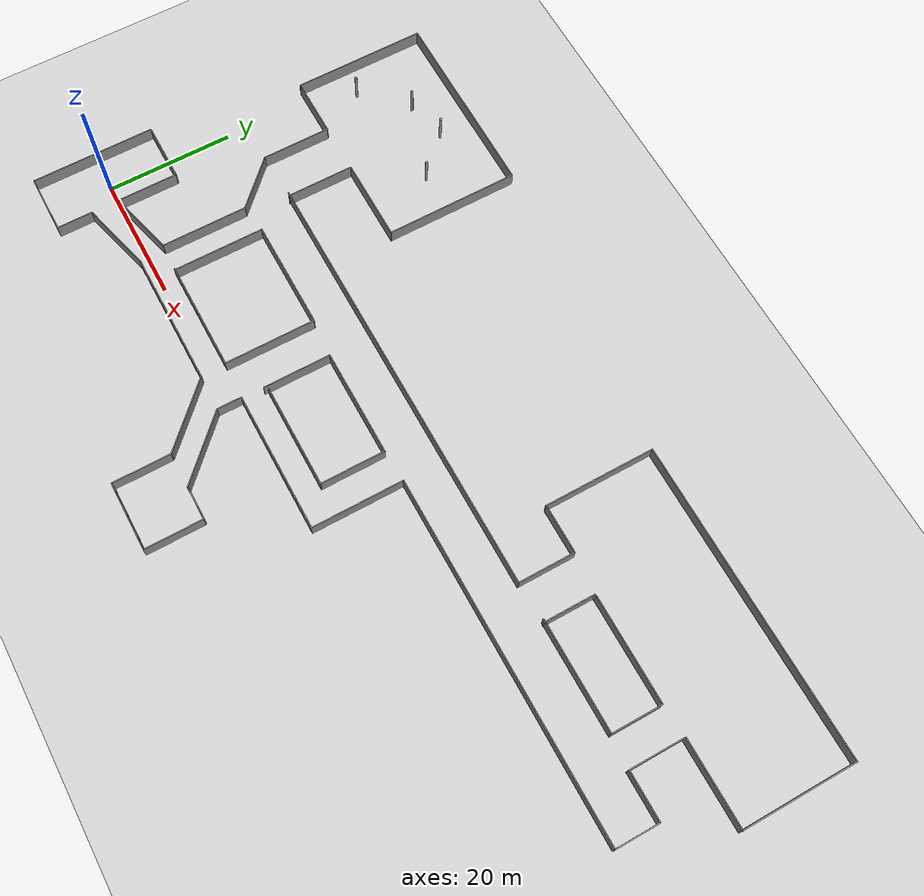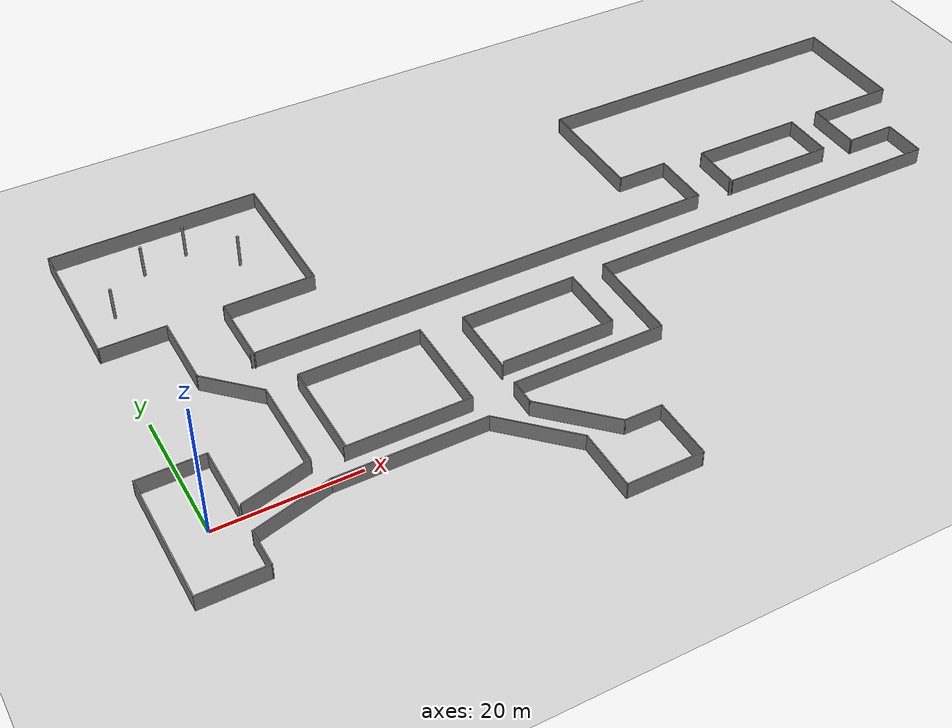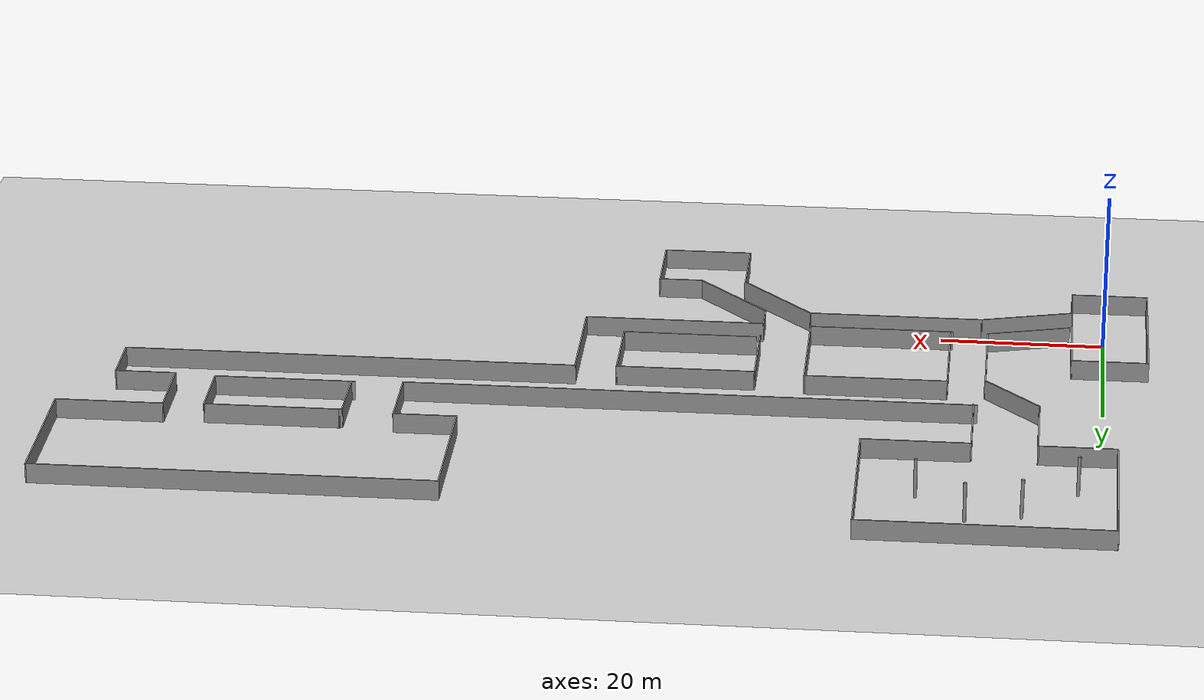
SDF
<sdf version="1.6">
 <world name="default">
  <model name="ground_plane">
   <static>1</static>
   <link name="link">
    <collision name="collision">
     <geometry><plane><normal>0 0 1</normal><size>100 100</size></plane></geometry>
     <surface><friction><ode><mu>100</mu><mu2>50</mu2></ode></friction></surface>
    </collision>
    <visual name="visual">
     <cast_shadows>0</cast_shadows>
     <geometry><plane><normal>0 0 1</normal><size>100 100</size></plane></geometry>
     <material>
      <script><uri>file://media/materials/scripts/gazebo.material</uri><name>Gazebo/Grey</name></script>
     </material>
    </visual>
   </link>
  </model>
  <model name="MultiExploreWorld">
   <pose>60 17.8179 0 0 -0 0</pose>
   <link name="Wall_10">
    <collision name="Wall_10_Collision">
     <geometry><box><size>9.5 0.15 2.5</size></box></geometry>
     <pose>0 0 1.25 0 -0 0</pose>
    </collision>
    <visual name="Wall_10_Visual">
     <pose>0 0 1.25 0 -0 0</pose>
     <geometry><box><size>9.5 0.15 2.5</size></box></geometry>
     <material>
      <script><uri>file://media/materials/scripts/gazebo.material</uri><name>Gazebo/Grey</name></script>
      <ambient>1 1 1 1</ambient>
     </material>
     <meta><layer>0</layer></meta>
    </visual>
    <pose>-60.789 -27.8261 0 0 -0 0</pose>
   </link>
   <link name="Wall_11">
    <collision name="Wall_11_Collision">
     <geometry><box><size>5.75 0.15 2.5</size></box></geometry>
     <pose>0 0 1.25 0 -0 0</pose>
    </collision>
    <visual name="Wall_11_Visual">
     <pose>0 0 1.25 0 -0 0</pose>
     <geometry><box><size>5.75 0.15 2.5</size></box></geometry>
     <material>
      <script><uri>file://media/materials/scripts/gazebo.material</uri><name>Gazebo/Grey</name></script>
      <ambient>1 1 1 1</ambient>
     </material>
     <meta><layer>0</layer></meta>
    </visual>
    <pose>-56.114 -25.0261 0 0 -0 1.5708</pose>
   </link>
   <link name="Wall_12">
    <collision name="Wall_12_Collision">
     <geometry><box><size>11.75 0.15 2.5</size></box></geometry>
     <pose>0 0 1.25 0 -0 0</pose>
    </collision>
    <visual name="Wall_12_Visual">
     <pose>0 0 1.25 0 -0 0</pose>
     <geometry><box><size>11.75 0.15 2.5</size></box></geometry>
     <material>
      <script><uri>file://media/materials/scripts/gazebo.material</uri><name>Gazebo/Grey</name></script>
      <ambient>1 1 1 1</ambient>
     </material>
     <meta><layer>0</layer></meta>
    </visual>
    <pose>-50.5116 -20.7249 0 0 -0 0.261799</pose>
   </link>
   <link name="Wall_13">
    <collision name="Wall_13_Collision">
     <geometry><box><size>21.5 0.15 2.5</size></box></geometry>
     <pose>0 0 1.25 0 -0 0</pose>
    </collision>
    <visual name="Wall_13_Visual">
     <pose>0 0 1.25 0 -0 0</pose>
     <geometry><box><size>21.5 0.15 2.5</size></box></geometry>
     <material>
      <script><uri>file://media/materials/scripts/gazebo.material</uri><name>Gazebo/Grey</name></script>
      <ambient>1 1 1 1</ambient>
     </material>
     <meta><layer>0</layer></meta>
    </visual>
    <pose>-34.2342 -19.2238 0 0 -0 0</pose>
   </link>
   <link name="Wall_14">
    <collision name="Wall_14_Collision">
     <geometry><box><size>12.5 0.15 2.5</size></box></geometry>
     <pose>0 0 1.25 0 -0 0</pose>
    </collision>
    <visual name="Wall_14_Visual">
     <pose>0 0 1.25 0 -0 0</pose>
     <geometry><box><size>12.5 0.15 2.5</size></box></geometry>
     <material>
      <script><uri>file://media/materials/scripts/gazebo.material</uri><name>Gazebo/Grey</name></script>
      <ambient>1 1 1 1</ambient>
     </material>
     <meta><layer>0</layer></meta>
    </visual>
    <pose>-19.1929 -23.5902 0 0 -0 -0.785398</pose>
   </link>
   <link name="Wall_15">
    <collision name="Wall_15_Collision">
     <geometry><box><size>9.25 0.15 2.5</size></box></geometry>
     <pose>0 0 1.25 0 -0 0</pose>
    </collision>
    <visual name="Wall_15_Visual">
     <pose>0 0 1.25 0 -0 0</pose>
     <geometry><box><size>9.25 0.15 2.5</size></box></geometry>
     <material>
      <script><uri>file://media/materials/scripts/gazebo.material</uri><name>Gazebo/Grey</name></script>
      <ambient>1 1 1 1</ambient>
     </material>
     <meta><layer>0</layer></meta>
    </visual>
    <pose>-14.8265 -32.5066 0 0 -0 -1.5708</pose>
   </link>
   <link name="Wall_16">
    <collision name="Wall_16_Collision">
     <geometry><box><size>11 0.15 2.5</size></box></geometry>
     <pose>0 0 1.25 0 -0 0</pose>
    </collision>
    <visual name="Wall_16_Visual">
     <pose>0 0 1.25 0 -0 0</pose>
     <geometry><box><size>11 0.15 2.5</size></box></geometry>
     <material>
      <script><uri>file://media/materials/scripts/gazebo.material</uri><name>Gazebo/Grey</name></script>
      <ambient>1 1 1 1</ambient>
     </material>
     <meta><layer>0</layer></meta>
    </visual>
    <pose>-9.40147 -37.0566 0 0 -0 0</pose>
   </link>
   <link name="Wall_17">
    <collision name="Wall_17_Collision">
     <geometry><box><size>9.25 0.15 2.5</size></box></geometry>
     <pose>0 0 1.25 0 -0 0</pose>
    </collision>
    <visual name="Wall_17_Visual">
     <pose>0 0 1.25 0 -0 0</pose>
     <geometry><box><size>9.25 0.15 2.5</size></box></geometry>
     <material>
      <script><uri>file://media/materials/scripts/gazebo.material</uri><name>Gazebo/Grey</name></script>
      <ambient>1 1 1 1</ambient>
     </material>
     <meta><layer>0</layer></meta>
    </visual>
    <pose>-3.97648 -32.5066 0 0 -0 1.5708</pose>
   </link>
   <link name="Wall_24">
    <collision name="Wall_24_Collision">
     <geometry><box><size>6.75 0.15 2.5</size></box></geometry>
     <pose>0 0 1.25 0 -0 0</pose>
    </collision>
    <visual name="Wall_24_Visual">
     <pose>0 0 1.25 0 -0 0</pose>
     <geometry><box><size>6.75 0.15 2.5</size></box></geometry>
     <material>
      <script><uri>file://media/materials/scripts/gazebo.material</uri><name>Gazebo/Grey</name></script>
      <ambient>1 1 1 1</ambient>
     </material>
     <meta><layer>0</layer></meta>
    </visual>
    <pose>59.714 2.20299 0 0 -0 1.5708</pose>
   </link>
   <link name="Wall_25">
    <collision name="Wall_25_Collision">
     <geometry><box><size>7.5 0.15 2.5</size></box></geometry>
     <pose>0 0 1.25 0 -0 0</pose>
    </collision>
    <visual name="Wall_25_Visual">
     <pose>0 0 1.25 0 -0 0</pose>
     <geometry><box><size>7.5 0.15 2.5</size></box></geometry>
     <material>
      <script><uri>file://media/materials/scripts/gazebo.material</uri><name>Gazebo/Grey</name></script>
      <ambient>1 1 1 1</ambient>
     </material>
     <meta><layer>0</layer></meta>
    </visual>
    <pose>56.039 5.50299 0 0 -0 3.14159</pose>
   </link>
   <link name="Wall_26">
    <collision name="Wall_26_Collision">
     <geometry><box><size>8.75 0.15 2.5</size></box></geometry>
     <pose>0 0 1.25 0 -0 0</pose>
    </collision>
    <visual name="Wall_26_Visual">
     <pose>0 0 1.25 0 -0 0</pose>
     <geometry><box><size>8.75 0.15 2.5</size></box></geometry>
     <material>
      <script><uri>file://media/materials/scripts/gazebo.material</uri><name>Gazebo/Grey</name></script>
      <ambient>1 1 1 1</ambient>
     </material>
     <meta><layer>0</layer></meta>
    </visual>
    <pose>52.364 9.80299 0 0 -0 1.5708</pose>
   </link>
   <link name="Wall_27">
    <collision name="Wall_27_Collision">
     <geometry><box><size>13.25 0.15 2.5</size></box></geometry>
     <pose>0 0 1.25 0 -0 0</pose>
    </collision>
    <visual name="Wall_27_Visual">
     <pose>0 0 1.25 0 -0 0</pose>
     <geometry><box><size>13.25 0.15 2.5</size></box></geometry>
     <material>
      <script><uri>file://media/materials/scripts/gazebo.material</uri><name>Gazebo/Grey</name></script>
      <ambient>1 1 1 1</ambient>
     </material>
     <meta><layer>0</layer></meta>
    </visual>
    <pose>58.914 14.103 0 0 -0 0</pose>
   </link>
   <link name="Wall_28">
    <collision name="Wall_28_Collision">
     <geometry><box><size>17.75 0.15 2.5</size></box></geometry>
     <pose>0 0 1.25 0 -0 0</pose>
    </collision>
    <visual name="Wall_28_Visual">
     <pose>0 0 1.25 0 -0 0</pose>
     <geometry><box><size>17.75 0.15 2.5</size></box></geometry>
     <material>
      <script><uri>file://media/materials/scripts/gazebo.material</uri><name>Gazebo/Grey</name></script>
      <ambient>1 1 1 1</ambient>
     </material>
     <meta><layer>0</layer></meta>
    </visual>
    <pose>65.464 22.903 0 0 -0 1.5708</pose>
   </link>
   <link name="Wall_29">
    <collision name="Wall_29_Collision">
     <geometry><box><size>48.75 0.15 2.5</size></box></geometry>
     <pose>0 0 1.25 0 -0 0</pose>
    </collision>
    <visual name="Wall_29_Visual">
     <pose>0 0 1.25 0 -0 0</pose>
     <geometry><box><size>48.75 0.15 2.5</size></box></geometry>
     <material>
      <script><uri>file://media/materials/scripts/gazebo.material</uri><name>Gazebo/Grey</name></script>
      <ambient>1 1 1 1</ambient>
     </material>
     <meta><layer>0</layer></meta>
    </visual>
    <pose>41.164 31.703 0 0 -0 3.14159</pose>
   </link>
   <link name="Wall_3">
    <collision name="Wall_3_Collision">
     <geometry><box><size>10 0.15 2.5</size></box></geometry>
     <pose>0 0 1.25 0 -0 0</pose>
    </collision>
    <visual name="Wall_3_Visual">
     <pose>0 0 1.25 0 -0 0</pose>
     <geometry><box><size>10 0.15 2.5</size></box></geometry>
     <material>
      <script><uri>file://media/materials/scripts/gazebo.material</uri><name>Gazebo/Grey</name></script>
      <ambient>1 1 1 1</ambient>
     </material>
     <meta><layer>0</layer></meta>
    </visual>
    <pose>-56.114 -13.1511 0 0 -0 1.5708</pose>
   </link>
   <link name="Wall_32">
    <collision name="Wall_32_Collision">
     <geometry><box><size>17.5 0.15 2.5</size></box></geometry>
     <pose>0 0 1.25 0 -0 0</pose>
    </collision>
    <visual name="Wall_32_Visual">
     <pose>0 0 1.25 0 -0 0</pose>
     <geometry><box><size>17.5 0.15 2.5</size></box></geometry>
     <material>
      <script><uri>file://media/materials/scripts/gazebo.material</uri><name>Gazebo/Grey</name></script>
      <ambient>1 1 1 1</ambient>
     </material>
     <meta><layer>0</layer></meta>
    </visual>
    <pose>16.864 23.028 0 0 -0 -1.5708</pose>
   </link>
   <link name="Wall_33">
    <collision name="Wall_33_Collision">
     <geometry><box><size>7.75 0.15 2.5</size></box></geometry>
     <pose>0 0 1.25 0 -0 0</pose>
    </collision>
    <visual name="Wall_33_Visual">
     <pose>0 0 1.25 0 -0 0</pose>
     <geometry><box><size>7.75 0.15 2.5</size></box></geometry>
     <material>
      <script><uri>file://media/materials/scripts/gazebo.material</uri><name>Gazebo/Grey</name></script>
      <ambient>1 1 1 1</ambient>
     </material>
     <meta><layer>0</layer></meta>
    </visual>
    <pose>20.664 14.353 0 0 -0 0</pose>
   </link>
   <link name="Wall_34">
    <collision name="Wall_34_Collision">
     <geometry><box><size>9 0.15 2.5</size></box></geometry>
     <pose>0 0 1.25 0 -0 0</pose>
    </collision>
    <visual name="Wall_34_Visual">
     <pose>0 0 1.25 0 -0 0</pose>
     <geometry><box><size>9 0.15 2.5</size></box></geometry>
     <material>
      <script><uri>file://media/materials/scripts/gazebo.material</uri><name>Gazebo/Grey</name></script>
      <ambient>1 1 1 1</ambient>
     </material>
     <meta><layer>0</layer></meta>
    </visual>
    <pose>24.464 9.92799 0 0 -0 -1.5708</pose>
   </link>
   <link name="Wall_35">
    <collision name="Wall_35_Collision">
     <geometry><box><size>69.5 0.15 2.5</size></box></geometry>
     <pose>0 0 1.25 0 -0 0</pose>
    </collision>
    <visual name="Wall_35_Visual">
     <pose>0 0 1.25 0 -0 0</pose>
     <geometry><box><size>69.5 0.15 2.5</size></box></geometry>
     <material>
      <script><uri>file://media/materials/scripts/gazebo.material</uri><name>Gazebo/Grey</name></script>
      <ambient>1 1 1 1</ambient>
     </material>
     <meta><layer>0</layer></meta>
    </visual>
    <pose>-10.211 5.50299 0 0 -0 3.14159</pose>
   </link>
   <link name="Wall_37">
    <collision name="Wall_37_Collision">
     <geometry><box><size>17.25 0.15 2.5</size></box></geometry>
     <pose>0 0 1.25 0 -0 0</pose>
    </collision>
    <visual name="Wall_37_Visual">
     <pose>0 0 1.25 0 -0 0</pose>
     <geometry><box><size>17.25 0.15 2.5</size></box></geometry>
     <material>
      <script><uri>file://media/materials/scripts/gazebo.material</uri><name>Gazebo/Grey</name></script>
      <ambient>1 1 1 1</ambient>
     </material>
     <meta><layer>0</layer></meta>
    </visual>
    <pose>38.8802 5.91246 0 0 -0 0</pose>
   </link>
   <link name="Wall_38">
    <collision name="Wall_38_Collision">
     <geometry><box><size>8 0.15 2.5</size></box></geometry>
     <pose>0 0 1.25 0 -0 0</pose>
    </collision>
    <visual name="Wall_38_Visual">
     <pose>0 0 1.25 0 -0 0</pose>
     <geometry><box><size>8 0.15 2.5</size></box></geometry>
     <material>
      <script><uri>file://media/materials/scripts/gazebo.material</uri><name>Gazebo/Grey</name></script>
      <ambient>1 1 1 1</ambient>
     </material>
     <meta><layer>0</layer></meta>
    </visual>
    <pose>47.4302 9.83746 0 0 -0 1.5708</pose>
   </link>
   <link name="Wall_39">
    <collision name="Wall_39_Collision">
     <geometry><box><size>16.5 0.15 2.5</size></box></geometry>
     <pose>0 0 1.25 0 -0 0</pose>
    </collision>
    <visual name="Wall_39_Visual">
     <pose>0 0 1.25 0 -0 0</pose>
     <geometry><box><size>16.5 0.15 2.5</size></box></geometry>
     <material>
      <script><uri>file://media/materials/scripts/gazebo.material</uri><name>Gazebo/Grey</name></script>
      <ambient>1 1 1 1</ambient>
     </material>
     <meta><layer>0</layer></meta>
    </visual>
    <pose>39.2552 13.7625 0 0 -0 3.14159</pose>
   </link>
   <link name="Wall_4">
    <collision name="Wall_4_Collision">
     <geometry><box><size>9.5 0.15 2.5</size></box></geometry>
     <pose>0 0 1.25 0 -0 0</pose>
    </collision>
    <visual name="Wall_4_Visual">
     <pose>0 0 1.25 0 -0 0</pose>
     <geometry><box><size>9.5 0.15 2.5</size></box></geometry>
     <material>
      <script><uri>file://media/materials/scripts/gazebo.material</uri><name>Gazebo/Grey</name></script>
      <ambient>1 1 1 1</ambient>
     </material>
     <meta><layer>0</layer></meta>
    </visual>
    <pose>-60.789 -8.22608 0 0 -0 3.14159</pose>
   </link>
   <link name="Wall_40">
    <collision name="Wall_40_Collision">
     <geometry><box><size>0.5 0.15 2.5</size></box></geometry>
     <pose>0 0 1.25 0 -0 0</pose>
    </collision>
    <visual name="Wall_40_Visual">
     <pose>0 0 1.25 0 -0 0</pose>
     <geometry><box><size>0.5 0.15 2.5</size></box></geometry>
     <material>
      <script><uri>file://media/materials/scripts/gazebo.material</uri><name>Gazebo/Grey</name></script>
      <ambient>1 1 1 1</ambient>
     </material>
     <meta><layer>0</layer></meta>
    </visual>
    <pose>30.9112 13.7172 0 0 -0 -2.87979</pose>
   </link>
   <link name="Wall_41">
    <collision name="Wall_41_Collision">
     <geometry><box><size>8 0.15 2.5</size></box></geometry>
     <pose>0 0 1.25 0 -0 0</pose>
    </collision>
    <visual name="Wall_41_Visual">
     <pose>0 0 1.25 0 -0 0</pose>
     <geometry><box><size>8 0.15 2.5</size></box></geometry>
     <material>
      <script><uri>file://media/materials/scripts/gazebo.material</uri><name>Gazebo/Grey</name></script>
      <ambient>1 1 1 1</ambient>
     </material>
     <meta><layer>0</layer></meta>
    </visual>
    <pose>30.7421 9.74687 0 0 -0 -1.5708</pose>
   </link>
   <link name="Wall_43">
    <collision name="Wall_43_Collision">
     <geometry><box><size>10.5 0.15 2.5</size></box></geometry>
     <pose>0 0 1.25 0 -0 0</pose>
    </collision>
    <visual name="Wall_43_Visual">
     <pose>0 0 1.25 0 -0 0</pose>
     <geometry><box><size>10.5 0.15 2.5</size></box></geometry>
     <material>
      <script><uri>file://media/materials/scripts/gazebo.material</uri><name>Gazebo/Grey</name></script>
      <ambient>1 1 1 1</ambient>
     </material>
     <meta><layer>0</layer></meta>
    </visual>
    <pose>-50.7332 -16.4443 0 0 -0 0.261799</pose>
   </link>
   <link name="Wall_44">
    <collision name="Wall_44_Collision">
     <geometry><box><size>13.75 0.15 2.5</size></box></geometry>
     <pose>0 0 1.25 0 -0 0</pose>
    </collision>
    <visual name="Wall_44_Visual">
     <pose>0 0 1.25 0 -0 0</pose>
     <geometry><box><size>13.75 0.15 2.5</size></box></geometry>
     <material>
      <script><uri>file://media/materials/scripts/gazebo.material</uri><name>Gazebo/Grey</name></script>
      <ambient>1 1 1 1</ambient>
     </material>
     <meta><layer>0</layer></meta>
    </visual>
    <pose>-45.7345 -8.3049 0 0 -0 1.5708</pose>
   </link>
   <link name="Wall_45">
    <collision name="Wall_45_Collision">
     <geometry><box><size>9.5 0.15 2.5</size></box></geometry>
     <pose>0 0 1.25 0 -0 0</pose>
    </collision>
    <visual name="Wall_45_Visual">
     <pose>0 0 1.25 0 -0 0</pose>
     <geometry><box><size>9.5 0.15 2.5</size></box></geometry>
     <material>
      <script><uri>file://media/materials/scripts/gazebo.material</uri><name>Gazebo/Grey</name></script>
      <ambient>1 1 1 1</ambient>
     </material>
     <meta><layer>0</layer></meta>
    </visual>
    <pose>-49.0403 1.80083 0 0 -0 2.35619</pose>
   </link>
   <link name="Wall_46">
    <collision name="Wall_46_Collision">
     <geometry><box><size>11 0.15 2.5</size></box></geometry>
     <pose>0 0 1.25 0 -0 0</pose>
    </collision>
    <visual name="Wall_46_Visual">
     <pose>0 0 1.25 0 -0 0</pose>
     <geometry><box><size>11 0.15 2.5</size></box></geometry>
     <material>
      <script><uri>file://media/materials/scripts/gazebo.material</uri><name>Gazebo/Grey</name></script>
      <ambient>1 1 1 1</ambient>
     </material>
     <meta><layer>0</layer></meta>
    </visual>
    <pose>-52.346 10.5316 0 0 -0 1.5708</pose>
   </link>
   <link name="Wall_47">
    <collision name="Wall_47_Collision">
     <geometry><box><size>9.5 0.15 2.5</size></box></geometry>
     <pose>0 0 1.25 0 -0 0</pose>
    </collision>
    <visual name="Wall_47_Visual">
     <pose>0 0 1.25 0 -0 0</pose>
     <geometry><box><size>9.5 0.15 2.5</size></box></geometry>
     <material>
      <script><uri>file://media/materials/scripts/gazebo.material</uri><name>Gazebo/Grey</name></script>
      <ambient>1 1 1 1</ambient>
     </material>
     <meta><layer>0</layer></meta>
    </visual>
    <pose>-57.021 15.9566 0 0 -0 3.14159</pose>
   </link>
   <link name="Wall_48">
    <collision name="Wall_48_Collision">
     <geometry><box><size>21.25 0.15 2.5</size></box></geometry>
     <pose>0 0 1.25 0 -0 0</pose>
    </collision>
    <visual name="Wall_48_Visual">
     <pose>0 0 1.25 0 -0 0</pose>
     <geometry><box><size>21.25 0.15 2.5</size></box></geometry>
     <material>
      <script><uri>file://media/materials/scripts/gazebo.material</uri><name>Gazebo/Grey</name></script>
      <ambient>1 1 1 1</ambient>
     </material>
     <meta><layer>0</layer></meta>
    </visual>
    <pose>-61.696 26.5066 0 0 -0 1.5708</pose>
   </link>
   <link name="Wall_49">
    <collision name="Wall_49_Collision">
     <geometry><box><size>30.5 0.15 2.5</size></box></geometry>
     <pose>0 0 1.25 0 -0 0</pose>
    </collision>
    <visual name="Wall_49_Visual">
     <pose>0 0 1.25 0 -0 0</pose>
     <geometry><box><size>30.5 0.15 2.5</size></box></geometry>
     <material>
      <script><uri>file://media/materials/scripts/gazebo.material</uri><name>Gazebo/Grey</name></script>
      <ambient>1 1 1 1</ambient>
     </material>
     <meta><layer>0</layer></meta>
    </visual>
    <pose>-46.521 37.0566 0 0 -0 0</pose>
   </link>
   <link name="Wall_5">
    <collision name="Wall_5_Collision">
     <geometry><box><size>19.75 0.15 2.5</size></box></geometry>
     <pose>0 0 1.25 0 -0 0</pose>
    </collision>
    <visual name="Wall_5_Visual">
     <pose>0 0 1.25 0 -0 0</pose>
     <geometry><box><size>19.75 0.15 2.5</size></box></geometry>
     <material>
      <script><uri>file://media/materials/scripts/gazebo.material</uri><name>Gazebo/Grey</name></script>
      <ambient>1 1 1 1</ambient>
     </material>
     <meta><layer>0</layer></meta>
    </visual>
    <pose>-65.464 -18.0261 0 0 -0 -1.5708</pose>
   </link>
   <link name="Wall_50">
    <collision name="Wall_50_Collision">
     <geometry><box><size>21.25 0.15 2.5</size></box></geometry>
     <pose>0 0 1.25 0 -0 0</pose>
    </collision>
    <visual name="Wall_50_Visual">
     <pose>0 0 1.25 0 -0 0</pose>
     <geometry><box><size>21.25 0.15 2.5</size></box></geometry>
     <material>
      <script><uri>file://media/materials/scripts/gazebo.material</uri><name>Gazebo/Grey</name></script>
      <ambient>1 1 1 1</ambient>
     </material>
     <meta><layer>0</layer></meta>
    </visual>
    <pose>-31.346 26.5066 0 0 -0 -1.5708</pose>
   </link>
   <link name="Wall_51">
    <collision name="Wall_51_Collision">
     <geometry><box><size>13.25 0.15 2.5</size></box></geometry>
     <pose>0 0 1.25 0 -0 0</pose>
    </collision>
    <visual name="Wall_51_Visual">
     <pose>0 0 1.25 0 -0 0</pose>
     <geometry><box><size>13.25 0.15 2.5</size></box></geometry>
     <material>
      <script><uri>file://media/materials/scripts/gazebo.material</uri><name>Gazebo/Grey</name></script>
      <ambient>1 1 1 1</ambient>
     </material>
     <meta><layer>0</layer></meta>
    </visual>
    <pose>-37.896 15.9566 0 0 -0 3.14159</pose>
   </link>
   <link name="Wall_52">
    <collision name="Wall_52_Collision">
     <geometry><box><size>10.75 0.15 2.5</size></box></geometry>
     <pose>0 0 1.25 0 -0 0</pose>
    </collision>
    <visual name="Wall_52_Visual">
     <pose>0 0 1.25 0 -0 0</pose>
     <geometry><box><size>10.75 0.15 2.5</size></box></geometry>
     <material>
      <script><uri>file://media/materials/scripts/gazebo.material</uri><name>Gazebo/Grey</name></script>
      <ambient>1 1 1 1</ambient>
     </material>
     <meta><layer>0</layer></meta>
    </visual>
    <pose>-44.446 10.6566 0 0 -0 -1.5708</pose>
   </link>
   <link name="Wall_55">
    <collision name="Wall_55_Collision">
     <geometry><box><size>17.75 0.15 2.5</size></box></geometry>
     <pose>0 0 1.25 0 -0 0</pose>
    </collision>
    <visual name="Wall_55_Visual">
     <pose>0 0 1.25 0 -0 0</pose>
     <geometry><box><size>17.75 0.15 2.5</size></box></geometry>
     <material>
      <script><uri>file://media/materials/scripts/gazebo.material</uri><name>Gazebo/Grey</name></script>
      <ambient>1 1 1 1</ambient>
     </material>
     <meta><layer>0</layer></meta>
    </visual>
    <pose>-32.5879 -15.2602 0 0 -0 0</pose>
   </link>
   <link name="Wall_56">
    <collision name="Wall_56_Collision">
     <geometry><box><size>14.5 0.15 2.5</size></box></geometry>
     <pose>0 0 1.25 0 -0 0</pose>
    </collision>
    <visual name="Wall_56_Visual">
     <pose>0 0 1.25 0 -0 0</pose>
     <geometry><box><size>14.5 0.15 2.5</size></box></geometry>
     <material>
      <script><uri>file://media/materials/scripts/gazebo.material</uri><name>Gazebo/Grey</name></script>
      <ambient>1 1 1 1</ambient>
     </material>
     <meta><layer>0</layer></meta>
    </visual>
    <pose>-23.7879 -8.08517 0 0 -0 1.5708</pose>
   </link>
   <link name="Wall_57">
    <collision name="Wall_57_Collision">
     <geometry><box><size>17.5 0.15 2.5</size></box></geometry>
     <pose>0 0 1.25 0 -0 0</pose>
    </collision>
    <visual name="Wall_57_Visual">
     <pose>0 0 1.25 0 -0 0</pose>
     <geometry><box><size>17.5 0.15 2.5</size></box></geometry>
     <material>
      <script><uri>file://media/materials/scripts/gazebo.material</uri><name>Gazebo/Grey</name></script>
      <ambient>1 1 1 1</ambient>
     </material>
     <meta><layer>0</layer></meta>
    </visual>
    <pose>-32.4629 -0.910175 0 0 -0 3.14159</pose>
   </link>
   <link name="Wall_58">
    <collision name="Wall_58_Collision">
     <geometry><box><size>14.5 0.15 2.5</size></box></geometry>
     <pose>0 0 1.25 0 -0 0</pose>
    </collision>
    <visual name="Wall_58_Visual">
     <pose>0 0 1.25 0 -0 0</pose>
     <geometry><box><size>14.5 0.15 2.5</size></box></geometry>
     <material>
      <script><uri>file://media/materials/scripts/gazebo.material</uri><name>Gazebo/Grey</name></script>
      <ambient>1 1 1 1</ambient>
     </material>
     <meta><layer>0</layer></meta>
    </visual>
    <pose>-41.1379 -8.08517 0 0 -0 -1.5708</pose>
   </link>
   <link name="Wall_64">
    <collision name="Wall_64_Collision">
     <geometry><box><size>5.5 0.15 2.5</size></box></geometry>
     <pose>0 0 1.25 0 -0 0</pose>
    </collision>
    <visual name="Wall_64_Visual">
     <pose>0 0 1.25 0 -0 0</pose>
     <geometry><box><size>5.5 0.15 2.5</size></box></geometry>
     <material>
      <script><uri>file://media/materials/scripts/gazebo.material</uri><name>Gazebo/Grey</name></script>
      <ambient>1 1 1 1</ambient>
     </material>
     <meta><layer>0</layer></meta>
    </visual>
    <pose>-6.65147 -27.9566 0 0 -0 3.14159</pose>
   </link>
   <link name="Wall_65">
    <collision name="Wall_65_Collision">
     <geometry><box><size>12.25 0.15 2.5</size></box></geometry>
     <pose>0 0 1.25 0 -0 0</pose>
    </collision>
    <visual name="Wall_65_Visual">
     <pose>0 0 1.25 0 -0 0</pose>
     <geometry><box><size>12.25 0.15 2.5</size></box></geometry>
     <material>
      <script><uri>file://media/materials/scripts/gazebo.material</uri><name>Gazebo/Grey</name></script>
      <ambient>1 1 1 1</ambient>
     </material>
     <meta><layer>0</layer></meta>
    </visual>
    <pose>-13.6045 -23.6786 0 0 -0 2.35619</pose>
   </link>
   <link name="Wall_66">
    <collision name="Wall_66_Collision">
     <geometry><box><size>4 0.15 2.5</size></box></geometry>
     <pose>0 0 1.25 0 -0 0</pose>
    </collision>
    <visual name="Wall_66_Visual">
     <pose>0 0 1.25 0 -0 0</pose>
     <geometry><box><size>4 0.15 2.5</size></box></geometry>
     <material>
      <script><uri>file://media/materials/scripts/gazebo.material</uri><name>Gazebo/Grey</name></script>
      <ambient>1 1 1 1</ambient>
     </material>
     <meta><layer>0</layer></meta>
    </visual>
    <pose>-17.8825 -17.4756 0 0 -0 1.5708</pose>
   </link>
   <link name="Wall_67">
    <collision name="Wall_67_Collision">
     <geometry><box><size>22.25 0.15 2.5</size></box></geometry>
     <pose>0 0 1.25 0 -0 0</pose>
    </collision>
    <visual name="Wall_67_Visual">
     <pose>0 0 1.25 0 -0 0</pose>
     <geometry><box><size>22.25 0.15 2.5</size></box></geometry>
     <material>
      <script><uri>file://media/materials/scripts/gazebo.material</uri><name>Gazebo/Grey</name></script>
      <ambient>1 1 1 1</ambient>
     </material>
     <meta><layer>0</layer></meta>
    </visual>
    <pose>-6.83247 -15.5506 0 0 -0 0</pose>
   </link>
   <link name="Wall_68">
    <collision name="Wall_68_Collision">
     <geometry><box><size>14.5 0.15 2.5</size></box></geometry>
     <pose>0 0 1.25 0 -0 0</pose>
    </collision>
    <visual name="Wall_68_Visual">
     <pose>0 0 1.25 0 -0 0</pose>
     <geometry><box><size>14.5 0.15 2.5</size></box></geometry>
     <material>
      <script><uri>file://media/materials/scripts/gazebo.material</uri><name>Gazebo/Grey</name></script>
      <ambient>1 1 1 1</ambient>
     </material>
     <meta><layer>0</layer></meta>
    </visual>
    <pose>4.21753 -8.37556 0 0 -0 1.5708</pose>
   </link>
   <link name="Wall_69">
    <collision name="Wall_69_Collision">
     <geometry><box><size>55.5 0.15 2.5</size></box></geometry>
     <pose>0 0 1.25 0 -0 0</pose>
    </collision>
    <visual name="Wall_69_Visual">
     <pose>0 0 1.25 0 -0 0</pose>
     <geometry><box><size>55.5 0.15 2.5</size></box></geometry>
     <material>
      <script><uri>file://media/materials/scripts/gazebo.material</uri><name>Gazebo/Grey</name></script>
      <ambient>1 1 1 1</ambient>
     </material>
     <meta><layer>0</layer></meta>
    </visual>
    <pose>31.8925 -1.20056 0 0 -0 0</pose>
   </link>
   <link name="Wall_71">
    <collision name="Wall_71_Collision">
     <geometry><box><size>10.75 0.15 2.5</size></box></geometry>
     <pose>0 0 1.25 0 -0 0</pose>
    </collision>
    <visual name="Wall_71_Visual">
     <pose>0 0 1.25 0 -0 0</pose>
     <geometry><box><size>10.75 0.15 2.5</size></box></geometry>
     <material>
      <script><uri>file://media/materials/scripts/gazebo.material</uri><name>Gazebo/Grey</name></script>
      <ambient>1 1 1 1</ambient>
     </material>
     <meta><layer>0</layer></meta>
    </visual>
    <pose>-17.718 -6.74789 0 0 -0 1.5708</pose>
   </link>
   <link name="Wall_72">
    <collision name="Wall_72_Collision">
     <geometry><box><size>17 0.15 2.5</size></box></geometry>
     <pose>0 0 1.25 0 -0 0</pose>
    </collision>
    <visual name="Wall_72_Visual">
     <pose>0 0 1.25 0 -0 0</pose>
     <geometry><box><size>17 0.15 2.5</size></box></geometry>
     <material>
      <script><uri>file://media/materials/scripts/gazebo.material</uri><name>Gazebo/Grey</name></script>
      <ambient>1 1 1 1</ambient>
     </material>
     <meta><layer>0</layer></meta>
    </visual>
    <pose>-9.29296 -1.44789 0 0 -0 0</pose>
   </link>
   <link name="Wall_73">
    <collision name="Wall_73_Collision">
     <geometry><box><size>10.25 0.15 2.5</size></box></geometry>
     <pose>0 0 1.25 0 -0 0</pose>
    </collision>
    <visual name="Wall_73_Visual">
     <pose>0 0 1.25 0 -0 0</pose>
     <geometry><box><size>10.25 0.15 2.5</size></box></geometry>
     <material>
      <script><uri>file://media/materials/scripts/gazebo.material</uri><name>Gazebo/Grey</name></script>
      <ambient>1 1 1 1</ambient>
     </material>
     <meta><layer>0</layer></meta>
    </visual>
    <pose>-0.867964 -6.49789 0 0 -0 -1.5708</pose>
   </link>
   <link name="Wall_74">
    <collision name="Wall_74_Collision">
     <geometry><box><size>16.5 0.15 2.5</size></box></geometry>
     <pose>0 0 1.25 0 -0 0</pose>
    </collision>
    <visual name="Wall_74_Visual">
     <pose>0 0 1.25 0 -0 0</pose>
     <geometry><box><size>16.5 0.15 2.5</size></box></geometry>
     <material>
      <script><uri>file://media/materials/scripts/gazebo.material</uri><name>Gazebo/Grey</name></script>
      <ambient>1 1 1 1</ambient>
     </material>
     <meta><layer>0</layer></meta>
    </visual>
    <pose>-9.04296 -11.5479 0 0 -0 3.14159</pose>
   </link>
   <static>1</static>
  </model>
  <model name="empty_pillar_8">
   <link name="link">
    <inertial>
     <mass>1</mass>
     <inertia><ixx>0.145833</ixx><ixy>0</ixy><ixz>0</ixz><iyy>0.145833</iyy><iyz>0</iyz><izz>0.125</izz></inertia>
    </inertial>
    <visual name="visual">
     <geometry><cylinder><radius>0.2</radius><length>5</length></cylinder></geometry>
     <material>
      <script><name>Gazebo/Grey</name><uri>file://media/materials/scripts/gazebo.material</uri></script>
      <shader type="vertex"><normal_map>__default__</normal_map></shader>
      <ambient>0.3 0.3 0.3 1</ambient>
      <diffuse>0.7 0.7 0.7 1</diffuse>
      <specular>0.01 0.01 0.01 1</specular>
      <emissive>0 0 0 1</emissive>
     </material>
    </visual>
    <collision name="collision">
     <geometry><cylinder><radius>0.05</radius><length>5</length></cylinder></geometry>
     <surface>
      <friction>
       <ode><mu>1</mu><mu2>1</mu2><fdir1>0 0 0</fdir1><slip1>0</slip1><slip2>0</slip2></ode>
       <torsional>
        <coefficient>1</coefficient>
        <patch_radius>0</patch_radius>
        <surface_radius>0</surface_radius>
        <use_patch_radius>1</use_patch_radius>
        <ode><slip>0</slip></ode>
       </torsional>
      </friction>
      <bounce><restitution_coefficient>0</restitution_coefficient><threshold>1e+06</threshold></bounce>
      <contact>
       <collide_without_contact>0</collide_without_contact>
       <collide_without_contact_bitmask>1</collide_without_contact_bitmask>
       <collide_bitmask>1</collide_bitmask>
       <ode>
        <soft_cfm>0</soft_cfm>
        <soft_erp>0.2</soft_erp>
        <kp>1e+13</kp>
        <kd>1</kd>
        <max_vel>0.01</max_vel>
        <min_depth>0</min_depth>
       </ode>
       <bullet>
        <split_impulse>1</split_impulse>
        <split_impulse_penetration_threshold>-0.01</split_impulse_penetration_threshold>
        <soft_cfm>0</soft_cfm>
        <soft_erp>0.2</soft_erp>
        <kp>1e+13</kp>
        <kd>1</kd>
       </bullet>
      </contact>
     </surface>
    </collision>
   </link>
   <static>0</static>
   <pose>2.88849 41.4112 2.50007 -5e-06 -0.001384 -3e-06</pose>
  </model>
  <model name="empty_pillar_9">
   <link name="link">
    <inertial>
     <mass>1</mass>
     <inertia><ixx>0.145833</ixx><ixy>0</ixy><ixz>0</ixz><iyy>0.145833</iyy><iyz>0</iyz><izz>0.125</izz></inertia>
    </inertial>
    <visual name="visual">
     <geometry><cylinder><radius>0.2</radius><length>5</length></cylinder></geometry>
     <material>
      <script><name>Gazebo/Grey</name><uri>file://media/materials/scripts/gazebo.material</uri></script>
      <shader type="vertex"><normal_map>__default__</normal_map></shader>
      <ambient>0.3 0.3 0.3 1</ambient>
      <diffuse>0.7 0.7 0.7 1</diffuse>
      <specular>0.01 0.01 0.01 1</specular>
      <emissive>0 0 0 1</emissive>
     </material>
    </visual>
    <collision name="collision">
     <geometry><cylinder><radius>0.05</radius><length>5</length></cylinder></geometry>
     <surface>
      <friction>
       <ode><mu>1</mu><mu2>1</mu2><fdir1>0 0 0</fdir1><slip1>0</slip1><slip2>0</slip2></ode>
       <torsional>
        <coefficient>1</coefficient>
        <patch_radius>0</patch_radius>
        <surface_radius>0</surface_radius>
        <use_patch_radius>1</use_patch_radius>
        <ode><slip>0</slip></ode>
       </torsional>
      </friction>
      <bounce><restitution_coefficient>0</restitution_coefficient><threshold>1e+06</threshold></bounce>
      <contact>
       <collide_without_contact>0</collide_without_contact>
       <collide_without_contact_bitmask>1</collide_without_contact_bitmask>
       <collide_bitmask>1</collide_bitmask>
       <ode>
        <soft_cfm>0</soft_cfm>
        <soft_erp>0.2</soft_erp>
        <kp>1e+13</kp>
        <kd>1</kd>
        <max_vel>0.01</max_vel>
        <min_depth>0</min_depth>
       </ode>
       <bullet>
        <split_impulse>1</split_impulse>
        <split_impulse_penetration_threshold>-0.01</split_impulse_penetration_threshold>
        <soft_cfm>0</soft_cfm>
        <soft_erp>0.2</soft_erp>
        <kp>1e+13</kp>
        <kd>1</kd>
       </bullet>
      </contact>
     </surface>
    </collision>
   </link>
   <static>0</static>
   <pose>15.9188 49.3543 2.50029 -1.9e-05 0.007097 -2e-06</pose>
  </model>
  <model name="empty_pillar_10">
   <link name="link">
    <inertial>
     <mass>1</mass>
     <inertia><ixx>0.145833</ixx><ixy>0</ixy><ixz>0</ixz><iyy>0.145833</iyy><iyz>0</iyz><izz>0.125</izz></inertia>
    </inertial>
    <visual name="visual">
     <geometry><cylinder><radius>0.2</radius><length>5</length></cylinder></geometry>
     <material>
      <script><name>Gazebo/Grey</name><uri>file://media/materials/scripts/gazebo.material</uri></script>
      <shader type="vertex"><normal_map>__default__</normal_map></shader>
      <ambient>0.3 0.3 0.3 1</ambient>
      <diffuse>0.7 0.7 0.7 1</diffuse>
      <specular>0.01 0.01 0.01 1</specular>
      <emissive>0 0 0 1</emissive>
     </material>
    </visual>
    <collision name="collision">
     <geometry><cylinder><radius>0.05</radius><length>5</length></cylinder></geometry>
     <surface>
      <friction>
       <ode><mu>1</mu><mu2>1</mu2><fdir1>0 0 0</fdir1><slip1>0</slip1><slip2>0</slip2></ode>
       <torsional>
        <coefficient>1</coefficient>
        <patch_radius>0</patch_radius>
        <surface_radius>0</surface_radius>
        <use_patch_radius>1</use_patch_radius>
        <ode><slip>0</slip></ode>
       </torsional>
      </friction>
      <bounce><restitution_coefficient>0</restitution_coefficient><threshold>1e+06</threshold></bounce>
      <contact>
       <collide_without_contact>0</collide_without_contact>
       <collide_without_contact_bitmask>1</collide_without_contact_bitmask>
       <collide_bitmask>1</collide_bitmask>
       <ode>
        <soft_cfm>0</soft_cfm>
        <soft_erp>0.2</soft_erp>
        <kp>1e+13</kp>
        <kd>1</kd>
        <max_vel>0.01</max_vel>
        <min_depth>0</min_depth>
       </ode>
       <bullet>
        <split_impulse>1</split_impulse>
        <split_impulse_penetration_threshold>-0.01</split_impulse_penetration_threshold>
        <soft_cfm>0</soft_cfm>
        <soft_erp>0.2</soft_erp>
        <kp>1e+13</kp>
        <kd>1</kd>
       </bullet>
      </contact>
     </surface>
    </collision>
   </link>
   <static>0</static>
   <pose>21.7831 43.6464 2.50036 -2.9e-05 0.009874 -3e-06</pose>
  </model>
  <model name="empty_pillar_11">
   <link name="link">
    <inertial>
     <mass>1</mass>
     <inertia><ixx>0.145833</ixx><ixy>0</ixy><ixz>0</ixz><iyy>0.145833</iyy><iyz>0</iyz><izz>0.125</izz></inertia>
    </inertial>
    <visual name="visual">
     <geometry><cylinder><radius>0.2</radius><length>5</length></cylinder></geometry>
     <material>
      <script><name>Gazebo/Grey</name><uri>file://media/materials/scripts/gazebo.material</uri></script>
      <shader type="vertex"><normal_map>__default__</normal_map></shader>
      <ambient>0.3 0.3 0.3 1</ambient>
      <diffuse>0.7 0.7 0.7 1</diffuse>
      <specular>0.01 0.01 0.01 1</specular>
      <emissive>0 0 0 1</emissive>
     </material>
    </visual>
    <collision name="collision">
     <geometry><cylinder><radius>0.05</radius><length>5</length></cylinder></geometry>
     <surface>
      <friction>
       <ode><mu>1</mu><mu2>1</mu2><fdir1>0 0 0</fdir1><slip1>0</slip1><slip2>0</slip2></ode>
       <torsional>
        <coefficient>1</coefficient>
        <patch_radius>0</patch_radius>
        <surface_radius>0</surface_radius>
        <use_patch_radius>1</use_patch_radius>
        <ode><slip>0</slip></ode>
       </torsional>
      </friction>
      <bounce><restitution_coefficient>0</restitution_coefficient><threshold>1e+06</threshold></bounce>
      <contact>
       <collide_without_contact>0</collide_without_contact>
       <collide_without_contact_bitmask>1</collide_without_contact_bitmask>
       <collide_bitmask>1</collide_bitmask>
       <ode>
        <soft_cfm>0</soft_cfm>
        <soft_erp>0.2</soft_erp>
        <kp>1e+13</kp>
        <kd>1</kd>
        <max_vel>0.01</max_vel>
        <min_depth>0</min_depth>
       </ode>
       <bullet>
        <split_impulse>1</split_impulse>
        <split_impulse_penetration_threshold>-0.01</split_impulse_penetration_threshold>
        <soft_cfm>0</soft_cfm>
        <soft_erp>0.2</soft_erp>
        <kp>1e+13</kp>
        <kd>1</kd>
       </bullet>
      </contact>
     </surface>
    </collision>
   </link>
   <static>0</static>
   <pose>9.35329 47.9112 2.50037 -9.8e-05 -0.009842 -2e-06</pose>
  </model>
 </world>
</sdf>
